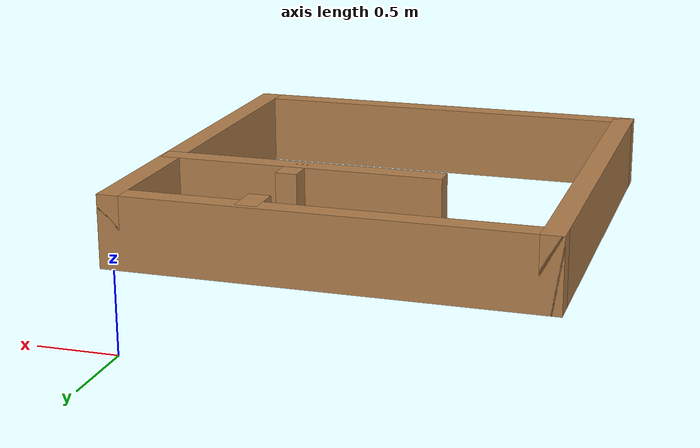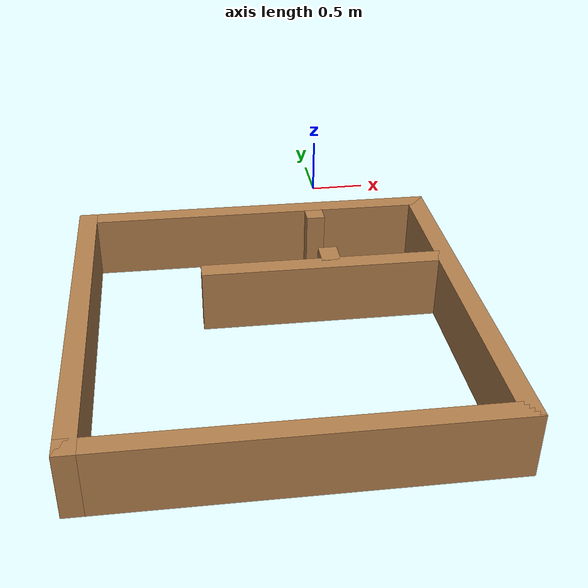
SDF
<?xml version='1.0'?>
<sdf version='1.7'>
  <model name='SimWorld3'>
    <pose>-0.7405 -2.1425 0 0 -0 0</pose>
    <link name='Wall_0'>
      <collision name='Wall_0_Collision'>
        <geometry>
          <box>
            <size>3 0.15 0.5</size>
          </box>
        </geometry>
        <pose>0 0 0.25 0 -0 0</pose>
      </collision>
      <visual name='Wall_0_Visual'>
        <pose>0 0 0.25 0 -0 0</pose>
        <geometry>
          <box>
            <size>3 0.15 0.5</size>
          </box>
        </geometry>
        <material>
          <script>
            <uri>file://media/materials/scripts/gazebo.material</uri>
            <name>Gazebo/Wood</name>
          </script>
          <ambient>1 1 1 1</ambient>
        </material>
        <meta>
          <layer>0</layer>
        </meta>
      </visual>
      <pose>-1.4205 -0.6425 0 0 -0 1.5708</pose>
    </link>
    <link name='Wall_1'>
      <collision name='Wall_1_Collision'>
        <geometry>
          <box>
            <size>2.9913 0.15 0.5</size>
          </box>
        </geometry>
        <pose>0 0 0.25 0 -0 0</pose>
      </collision>
      <visual name='Wall_1_Visual'>
        <pose>0 0 0.25 0 -0 0</pose>
        <geometry>
          <box>
            <size>2.9913 0.15 0.5</size>
          </box>
        </geometry>
        <material>
          <script>
            <uri>file://media/materials/scripts/gazebo.material</uri>
            <name>Gazebo/Wood</name>
          </script>
          <ambient>1 1 1 1</ambient>
        </material>
        <meta>
          <layer>0</layer>
        </meta>
      </visual>
      <pose>0 0.7825 0 0 -0 0</pose>
    </link>
    <link name='Wall_11'>
      <collision name='Wall_11_Collision'>
        <geometry>
          <box>
            <size>0.25 0.15 0.5</size>
          </box>
        </geometry>
        <pose>0 0 0.25 0 -0 0</pose>
      </collision>
      <visual name='Wall_11_Visual'>
        <pose>0 0 0.25 0 -0 0</pose>
        <geometry>
          <box>
            <size>0.25 0.15 0.5</size>
          </box>
        </geometry>
        <material>
          <script>
            <uri>file://media/materials/scripts/gazebo.material</uri>
            <name>Gazebo/Wood</name>
          </script>
          <ambient>1 1 1 1</ambient>
        </material>
        <meta>
          <layer>0</layer>
        </meta>
      </visual>
      <pose>0.5005 0.6925 0 0 -0 -1.5708</pose>
    </link>
    <link name='Wall_13'>
      <collision name='Wall_13_Collision'>
        <geometry>
          <box>
            <size>0.25 0.15 0.5</size>
          </box>
        </geometry>
        <pose>0 0 0.25 0 -0 0</pose>
      </collision>
      <visual name='Wall_13_Visual'>
        <pose>0 0 0.25 0 -0 0</pose>
        <geometry>
          <box>
            <size>0.25 0.15 0.5</size>
          </box>
        </geometry>
        <material>
          <script>
            <uri>file://media/materials/scripts/gazebo.material</uri>
            <name>Gazebo/Wood</name>
          </script>
          <ambient>1 1 1 1</ambient>
        </material>
        <meta>
          <layer>0</layer>
        </meta>
      </visual>
      <pose>0.5105 -0.0645 0 0 -0 1.5708</pose>
    </link>
    <link name='Wall_2'>
      <collision name='Wall_2_Collision'>
        <geometry>
          <box>
            <size>3 0.15 0.5</size>
          </box>
        </geometry>
        <pose>0 0 0.25 0 -0 0</pose>
      </collision>
      <visual name='Wall_2_Visual'>
        <pose>0 0 0.25 0 -0 0</pose>
        <geometry>
          <box>
            <size>3 0.15 0.5</size>
          </box>
        </geometry>
        <material>
          <script>
            <uri>file://media/materials/scripts/gazebo.material</uri>
            <name>Gazebo/Wood</name>
          </script>
          <ambient>1 1 1 1</ambient>
        </material>
        <meta>
          <layer>0</layer>
        </meta>
      </visual>
      <pose>1.4205 -0.6425 0 0 -0 -1.5708</pose>
    </link>
    <link name='Wall_3'>
      <collision name='Wall_3_Collision'>
        <geometry>
          <box>
            <size>2.9913 0.15 0.5</size>
          </box>
        </geometry>
        <pose>0 0 0.25 0 -0 0</pose>
      </collision>
      <visual name='Wall_3_Visual'>
        <pose>0 0 0.25 0 -0 0</pose>
        <geometry>
          <box>
            <size>2.9913 0.15 0.5</size>
          </box>
        </geometry>
        <material>
          <script>
            <uri>file://media/materials/scripts/gazebo.material</uri>
            <name>Gazebo/Wood</name>
          </script>
          <ambient>1 1 1 1</ambient>
        </material>
        <meta>
          <layer>0</layer>
        </meta>
      </visual>
      <pose>0 -2.0675 0 0 -0 3.14159</pose>
    </link>
    <link name='Wall_7'>
      <collision name='Wall_7_Collision'>
        <geometry>
          <box>
            <size>2 0.15 0.5</size>
          </box>
        </geometry>
        <pose>0 0 0.25 0 -0 0</pose>
      </collision>
      <visual name='Wall_7_Visual'>
        <pose>0 0 0.25 0 -0 0</pose>
        <geometry>
          <box>
            <size>2 0.15 0.5</size>
          </box>
        </geometry>
        <material>
          <script>
            <uri>file://media/materials/scripts/gazebo.material</uri>
            <name>Gazebo/Wood</name>
          </script>
          <ambient>1 1 1 1</ambient>
        </material>
        <meta>
          <layer>0</layer>
        </meta>
      </visual>
      <pose>0.4855 -0.1775 0 0 -0 3.14159</pose>
    </link>
    <static>1</static>
  </model>
</sdf>
